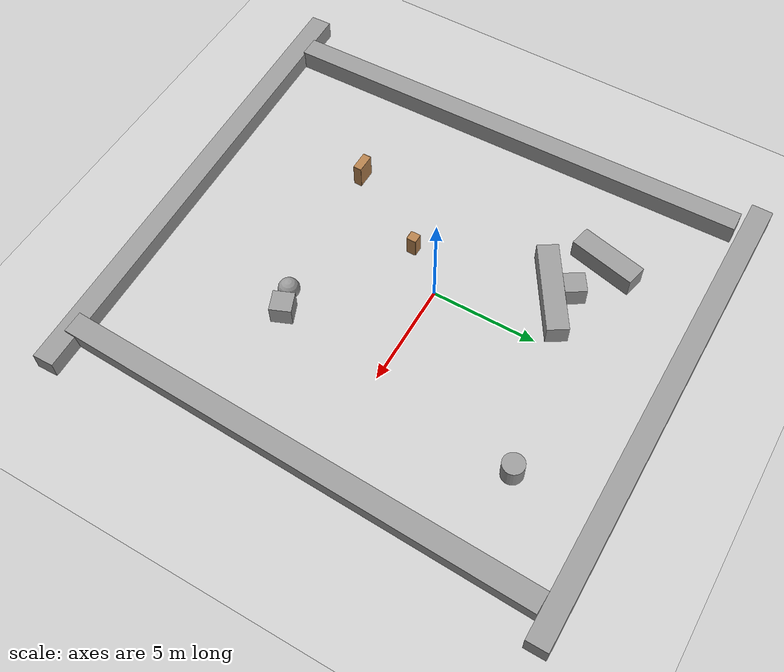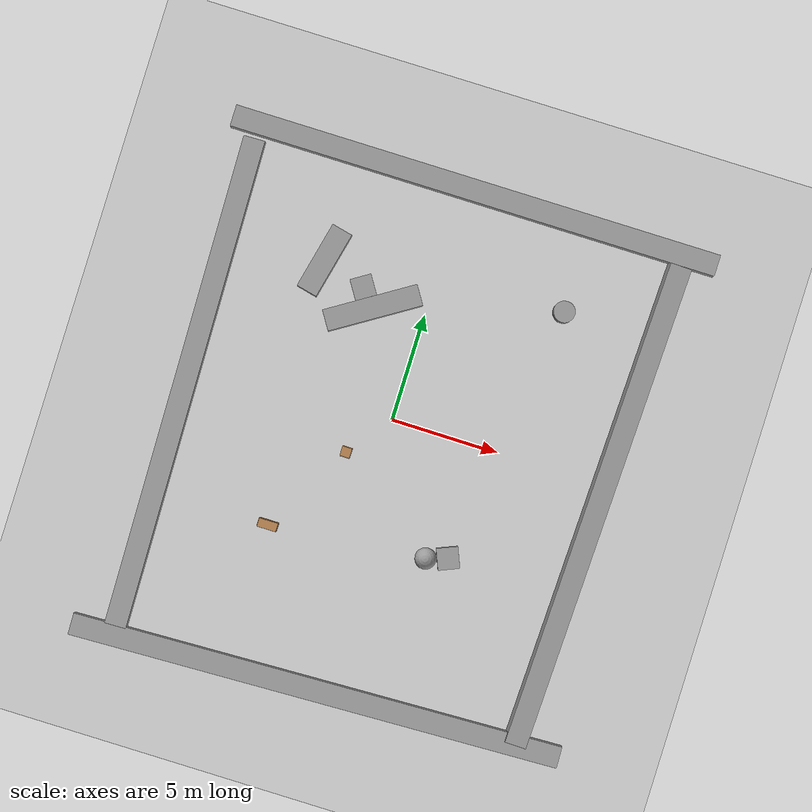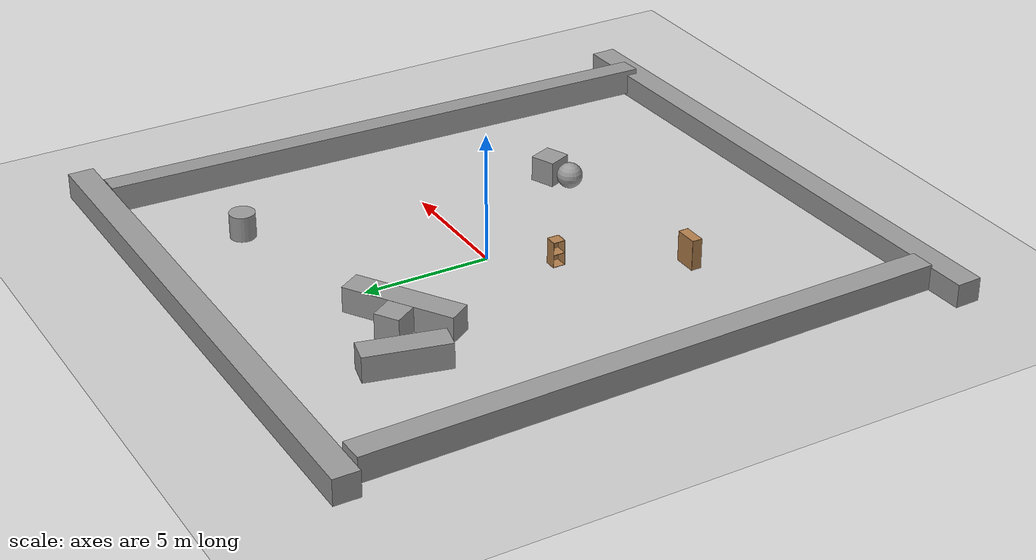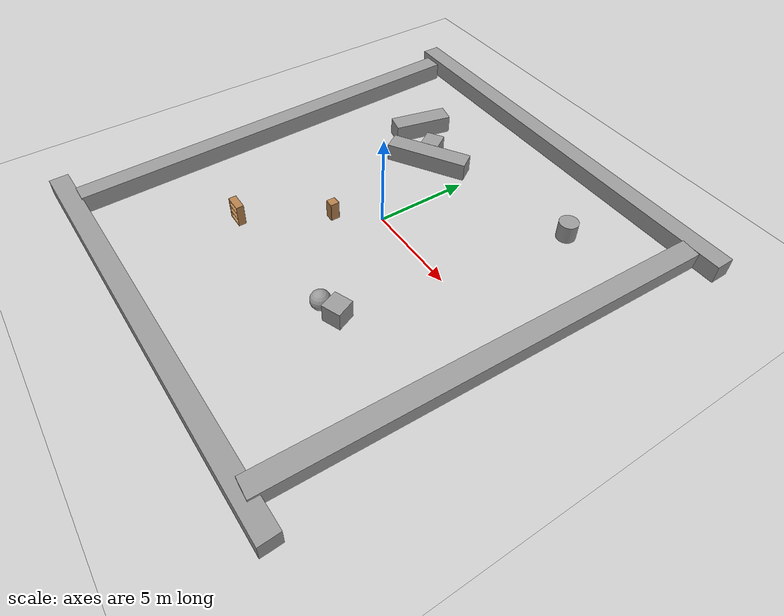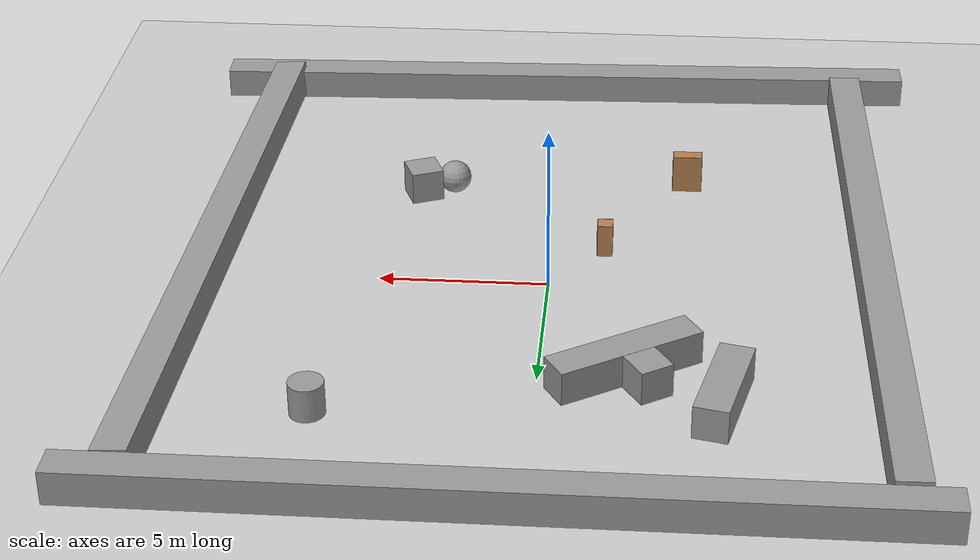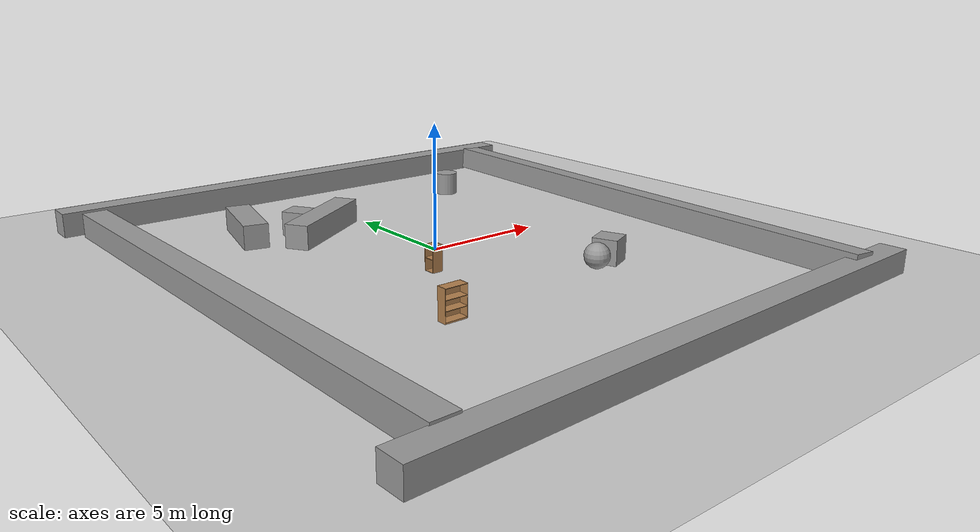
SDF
<sdf version="1.5">
 <world name="default">
  <light name="sun" type="directional">
   <pose>0 0 10 0 -0 0</pose>
   <diffuse>0.8 0.8 0.8 1</diffuse>
   <specular>0.2 0.2 0.2 1</specular>
   <attenuation>
    <range>1000</range>
    <constant>0.9</constant>
    <linear>0.01</linear>
    <quadratic>0.001</quadratic>
   </attenuation>
   <direction>-0.5 0.1 -0.9</direction>
  </light>
  <model name="ground_plane">
   <static>1</static>
   <link name="link">
    <collision name="collision">
     <geometry><plane><normal>0 0 1</normal><size>100 100</size></plane></geometry>
     <surface><friction><ode><mu>100</mu><mu2>50</mu2></ode></friction></surface>
    </collision>
    <visual name="visual">
     <cast_shadows>0</cast_shadows>
     <geometry><plane><normal>0 0 1</normal><size>100 100</size></plane></geometry>
     <material>
      <script><uri>file://media/materials/scripts/gazebo.material</uri><name>Gazebo/Grey</name></script>
     </material>
    </visual>
   </link>
  </model>
  <physics name="default_physics" default="0" type="ode">
   <max_step_size>0.001</max_step_size>
   <real_time_factor>1</real_time_factor>
   <real_time_update_rate>1000</real_time_update_rate>
   <gravity>0 0 -9.8</gravity>
   <magnetic_field>5.5645e-06 2.28758e-05 -4.23884e-05</magnetic_field>
  </physics>
  <scene><ambient>0.4 0.4 0.4 1</ambient><background>0.7 0.7 0.7 1</background><shadows>1</shadows></scene>
  <spherical_coordinates>
   <surface_model>EARTH_WGS84</surface_model>
   <latitude_deg>0</latitude_deg>
   <longitude_deg>0</longitude_deg>
   <elevation>0</elevation>
   <heading_deg>0</heading_deg>
  </spherical_coordinates>
  <model name="unit_box_5">
   <static>1</static>
   <pose>-9.50452 -1.12366 0.484726 0.001332 -3.1e-05 0.021391</pose>
   <link name="link">
    <inertial>
     <mass>1</mass>
     <inertia>
      <ixx>0.166667</ixx>
      <ixy>0</ixy>
      <ixz>0</ixz>
      <iyy>0.166667</iyy>
      <iyz>0</iyz>
      <izz>0.166667</izz>
     </inertia>
    </inertial>
    <collision name="collision"><geometry><box><size>1 22.98 1</size></box></geometry></collision>
    <visual name="visual">
     <geometry><box><size>1 22.98 1</size></box></geometry>
     <material>
      <script><name>Gazebo/Grey</name><uri>file://media/materials/scripts/gazebo.material</uri></script>
     </material>
    </visual>
    <gravity>0</gravity>
   </link>
  </model>
  <model name="unit_box_5_clone">
   <static>1</static>
   <pose>10.0285 -0.951523 0.560557 0.001177 0.073934 -0.033517</pose>
   <link name="link">
    <inertial>
     <mass>1</mass>
     <inertia>
      <ixx>0.166667</ixx>
      <ixy>0</ixy>
      <ixz>0</ixz>
      <iyy>0.166667</iyy>
      <iyz>0</iyz>
      <izz>0.166667</izz>
     </inertia>
    </inertial>
    <collision name="collision"><geometry><box><size>1 22.98 1</size></box></geometry></collision>
    <visual name="visual">
     <geometry><box><size>1 22.98 1</size></box></geometry>
     <material>
      <script><name>Gazebo/Grey</name><uri>file://media/materials/scripts/gazebo.material</uri></script>
     </material>
    </visual>
    <gravity>0</gravity>
   </link>
  </model>
  <model name="unit_box_5_clone_0">
   <static>1</static>
   <pose>0.517126 11.0582 0.546826 0 0 -1.57249</pose>
   <link name="link">
    <inertial>
     <mass>1</mass>
     <inertia>
      <ixx>0.166667</ixx>
      <ixy>0</ixy>
      <ixz>0</ixz>
      <iyy>0.166667</iyy>
      <iyz>0</iyz>
      <izz>0.166667</izz>
     </inertia>
    </inertial>
    <collision name="collision"><geometry><box><size>1 22.98 1</size></box></geometry></collision>
    <visual name="visual">
     <geometry><box><size>1 22.98 1</size></box></geometry>
     <material>
      <script><name>Gazebo/Grey</name><uri>file://media/materials/scripts/gazebo.material</uri></script>
     </material>
    </visual>
    <gravity>0</gravity>
   </link>
  </model>
  <model name="unit_box_5_clone_0_clone">
   <static>1</static>
   <pose>0.273547 -12.7537 0.380426 0 0 -1.53891</pose>
   <link name="link">
    <inertial>
     <mass>1</mass>
     <inertia>
      <ixx>0.166667</ixx>
      <ixy>0</ixy>
      <ixz>0</ixz>
      <iyy>0.166667</iyy>
      <iyz>0</iyz>
      <izz>0.166667</izz>
     </inertia>
    </inertial>
    <collision name="collision"><geometry><box><size>1 22.98 1</size></box></geometry></collision>
    <visual name="visual">
     <geometry><box><size>1 22.98 1</size></box></geometry>
     <material>
      <script><name>Gazebo/Grey</name><uri>file://media/materials/scripts/gazebo.material</uri></script>
     </material>
    </visual>
    <gravity>0</gravity>
   </link>
  </model>
  <model name="unit_cylinder_1">
   <pose>6 7 0.499998 3e-06 -2e-06 0</pose>
   <link name="link">
    <inertial>
     <mass>1</mass>
     <inertia><ixx>0.145833</ixx><ixy>0</ixy><ixz>0</ixz><iyy>0.145833</iyy><iyz>0</iyz><izz>0.125</izz></inertia>
    </inertial>
    <collision name="collision">
     <geometry><cylinder><radius>0.5</radius><length>1</length></cylinder></geometry>
    </collision>
    <visual name="visual">
     <geometry><cylinder><radius>0.5</radius><length>1</length></cylinder></geometry>
     <material>
      <script><name>Gazebo/Grey</name><uri>file://media/materials/scripts/gazebo.material</uri></script>
     </material>
    </visual>
   </link>
  </model>
  <model name="unit_sphere_1">
   <pose>3.29866 -5.55716 0.5 0.00805 -0.03499 0.003184</pose>
   <link name="link">
    <inertial>
     <mass>1</mass>
     <inertia><ixx>0.1</ixx><ixy>0</ixy><ixz>0</ixz><iyy>0.1</iyy><iyz>0</iyz><izz>0.1</izz></inertia>
    </inertial>
    <collision name="collision"><geometry><sphere><radius>0.5</radius></sphere></geometry></collision>
    <visual name="visual">
     <geometry><sphere><radius>0.5</radius></sphere></geometry>
     <material>
      <script><name>Gazebo/Grey</name><uri>file://media/materials/scripts/gazebo.material</uri></script>
     </material>
    </visual>
   </link>
  </model>
  <model name="unit_box_1">
   <pose>-5.08521 6.01932 0.499996 0 -8e-06 -0.229292</pose>
   <link name="link">
    <inertial>
     <mass>1</mass>
     <inertia>
      <ixx>0.166667</ixx>
      <ixy>0</ixy>
      <ixz>0</ixz>
      <iyy>0.166667</iyy>
      <iyz>0</iyz>
      <izz>0.166667</izz>
     </inertia>
    </inertial>
    <collision name="collision"><geometry><box><size>1 3.21602 1</size></box></geometry></collision>
    <visual name="visual">
     <geometry><box><size>1 3.21602 1</size></box></geometry>
     <material>
      <script><name>Gazebo/Grey</name><uri>file://media/materials/scripts/gazebo.material</uri></script>
     </material>
    </visual>
   </link>
  </model>
  <model name="unit_box_2">
   <pose>-2.36641 4.61197 0.499999 3e-06 -4.23516e-22 0.562554</pose>
   <link name="link">
    <inertial>
     <mass>1</mass>
     <inertia>
      <ixx>0.166667</ixx>
      <ixy>0</ixy>
      <ixz>0</ixz>
      <iyy>0.166667</iyy>
      <iyz>0</iyz>
      <izz>0.166667</izz>
     </inertia>
    </inertial>
    <collision name="collision"><geometry><box><size>4.45693 1 1</size></box></geometry></collision>
    <visual name="visual">
     <geometry><box><size>4.45693 1 1</size></box></geometry>
     <material>
      <script><name>Gazebo/Grey</name><uri>file://media/materials/scripts/gazebo.material</uri></script>
     </material>
    </visual>
   </link>
  </model>
  <model name="unit_box_3">
   <pose>4.2614 -5.24177 0.5 0 -0 0.391842</pose>
   <link name="link">
    <inertial>
     <mass>1</mass>
     <inertia>
      <ixx>0.166667</ixx>
      <ixy>0</ixy>
      <ixz>0</ixz>
      <iyy>0.166667</iyy>
      <iyz>0</iyz>
      <izz>0.166667</izz>
     </inertia>
    </inertial>
    <collision name="collision"><geometry><box><size>1 1 1</size></box></geometry></collision>
    <visual name="visual">
     <geometry><box><size>1 1 1</size></box></geometry>
     <material>
      <script><name>Gazebo/Grey</name><uri>file://media/materials/scripts/gazebo.material</uri></script>
     </material>
    </visual>
   </link>
  </model>
  <model name="unit_box_4">
   <pose>-3.04327 5.36944 0.500005 -1.69407e-21 -1e-05 0.566049</pose>
   <link name="link">
    <inertial>
     <mass>1</mass>
     <inertia>
      <ixx>0.166667</ixx>
      <ixy>0</ixy>
      <ixz>0</ixz>
      <iyy>0.166667</iyy>
      <iyz>0</iyz>
      <izz>0.166667</izz>
     </inertia>
    </inertial>
    <collision name="collision"><geometry><box><size>1 1 1</size></box></geometry></collision>
    <visual name="visual">
     <geometry><box><size>1 1 1</size></box></geometry>
     <material>
      <script><name>Gazebo/Grey</name><uri>file://media/materials/scripts/gazebo.material</uri></script>
     </material>
    </visual>
   </link>
  </model>
  <model name="bookshelf">
   <static>1</static>
   <link name="link">
    <inertial><mass>1</mass></inertial>
    <collision name="back">
     <pose>0 0.005 0.6 0 -0 0</pose>
     <geometry><box><size>0.9 0.01 1.2</size></box></geometry>
    </collision>
    <visual name="visual1">
     <pose>0 0.005 0.6 0 -0 0</pose>
     <geometry><box><size>0.9 0.01 1.2</size></box></geometry>
     <material>
      <script><uri>file://media/materials/scripts/gazebo.material</uri><name>Gazebo/Wood</name></script>
     </material>
    </visual>
    <collision name="left_side">
     <pose>0.45 -0.195 0.6 0 -0 0</pose>
     <geometry><box><size>0.02 0.4 1.2</size></box></geometry>
    </collision>
    <visual name="visual2">
     <pose>0.45 -0.195 0.6 0 -0 0</pose>
     <geometry><box><size>0.02 0.4 1.2</size></box></geometry>
     <material>
      <script><uri>file://media/materials/scripts/gazebo.material</uri><name>Gazebo/Wood</name></script>
     </material>
    </visual>
    <collision name="right_side">
     <pose>-0.45 -0.195 0.6 0 -0 0</pose>
     <geometry><box><size>0.02 0.4 1.2</size></box></geometry>
    </collision>
    <visual name="visual3">
     <pose>-0.45 -0.195 0.6 0 -0 0</pose>
     <geometry><box><size>0.02 0.4 1.2</size></box></geometry>
     <material>
      <script><uri>file://media/materials/scripts/gazebo.material</uri><name>Gazebo/Wood</name></script>
     </material>
    </visual>
    <collision name="bottom">
     <pose>0 -0.195 0.03 0 -0 0</pose>
     <geometry><box><size>0.88 0.4 0.06</size></box></geometry>
    </collision>
    <visual name="visual4">
     <pose>0 -0.195 0.03 0 -0 0</pose>
     <geometry><box><size>0.88 0.4 0.06</size></box></geometry>
     <material>
      <script><uri>file://media/materials/scripts/gazebo.material</uri><name>Gazebo/Wood</name></script>
     </material>
    </visual>
    <collision name="top">
     <pose>0 -0.195 1.19 0 -0 0</pose>
     <geometry><box><size>0.88 0.4 0.02</size></box></geometry>
    </collision>
    <visual name="visual5">
     <pose>0 -0.195 1.19 0 -0 0</pose>
     <geometry><box><size>0.88 0.4 0.02</size></box></geometry>
     <material>
      <script><uri>file://media/materials/scripts/gazebo.material</uri><name>Gazebo/Wood</name></script>
     </material>
    </visual>
    <collision name="low_shelf">
     <pose>0 -0.195 0.43 0 -0 0</pose>
     <geometry><box><size>0.88 0.4 0.02</size></box></geometry>
    </collision>
    <visual name="visual6">
     <pose>0 -0.195 0.43 0 -0 0</pose>
     <geometry><box><size>0.88 0.4 0.02</size></box></geometry>
     <material>
      <script><uri>file://media/materials/scripts/gazebo.material</uri><name>Gazebo/Wood</name></script>
     </material>
    </visual>
    <collision name="high_shelf">
     <pose>0 -0.195 0.8 0 -0 0</pose>
     <geometry><box><size>0.88 0.4 0.02</size></box></geometry>
    </collision>
    <visual name="visual7">
     <pose>0 -0.195 0.8 0 -0 0</pose>
     <geometry><box><size>0.88 0.4 0.02</size></box></geometry>
     <material>
      <script><uri>file://media/materials/scripts/gazebo.material</uri><name>Gazebo/Wood</name></script>
     </material>
    </visual>
   </link>
   <pose>-4 -6 0 0 -0 0</pose>
  </model>
  <model name="cabinet">
   <static>1</static>
   <link name="cabinet_bottom_plate">
    <inertial>
     <pose>0 0 -1 0 -0 0</pose>
     <inertia><ixx>2.05</ixx><ixy>0</ixy><ixz>0</ixz><iyy>2.05</iyy><iyz>0</iyz><izz>2.05</izz></inertia>
     <mass>25</mass>
    </inertial>
    <collision name="cabinet_bottom_plate_geom">
     <pose>0 0 0.01 0 -0 0</pose>
     <geometry><box><size>0.45 0.45 0.02</size></box></geometry>
    </collision>
    <visual name="cabinet_bottom_plate_geom_visual">
     <pose>0 0 0.01 0 -0 0</pose>
     <geometry><box><size>0.45 0.45 0.02</size></box></geometry>
     <material>
      <script><uri>file://media/materials/scripts/gazebo.material</uri><name>Gazebo/Wood</name></script>
     </material>
    </visual>
    <collision name="cabinet_bottom_plate_geom_cabinet_back_plate">
     <pose>0.235 0 0.51 0 -0 0</pose>
     <geometry><box><size>0.02 0.45 1.02</size></box></geometry>
    </collision>
    <visual name="cabinet_bottom_plate_geom_cabinet_back_plate_visual">
     <pose>0.235 0 0.51 0 -0 0</pose>
     <geometry><box><size>0.02 0.45 1.02</size></box></geometry>
     <material>
      <script><uri>file://media/materials/scripts/gazebo.material</uri><name>Gazebo/Wood</name></script>
     </material>
    </visual>
    <collision name="cabinet_bottom_plate_geom_cabinet_left_plate">
     <pose>0 0.235 0.51 0 -0 0</pose>
     <geometry><box><size>0.45 0.02 1.02</size></box></geometry>
    </collision>
    <visual name="cabinet_bottom_plate_geom_cabinet_left_plate_visual">
     <pose>0 0.235 0.51 0 -0 0</pose>
     <geometry><box><size>0.45 0.02 1.02</size></box></geometry>
     <material>
      <script><uri>file://media/materials/scripts/gazebo.material</uri><name>Gazebo/Wood</name></script>
     </material>
    </visual>
    <collision name="cabinet_bottom_plate_geom_cabinet_middle_plate">
     <pose>0 0 0.51 0 -0 0</pose>
     <geometry><box><size>0.45 0.45 0.02</size></box></geometry>
    </collision>
    <visual name="cabinet_bottom_plate_geom_cabinet_middle_plate_visual">
     <pose>0 0 0.51 0 -0 0</pose>
     <geometry><box><size>0.45 0.45 0.02</size></box></geometry>
     <material>
      <script><uri>file://media/materials/scripts/gazebo.material</uri><name>Gazebo/Wood</name></script>
     </material>
    </visual>
    <collision name="cabinet_bottom_plate_geom_cabinet_right_plate">
     <pose>0 -0.235 0.51 0 -0 0</pose>
     <geometry><box><size>0.45 0.02 1.02</size></box></geometry>
    </collision>
    <visual name="cabinet_bottom_plate_geom_cabinet_right_plate_visual">
     <pose>0 -0.235 0.51 0 -0 0</pose>
     <geometry><box><size>0.45 0.02 1.02</size></box></geometry>
     <material>
      <script><uri>file://media/materials/scripts/gazebo.material</uri><name>Gazebo/Wood</name></script>
     </material>
    </visual>
    <collision name="cabinet_bottom_plate_geom_cabinet_top_plate">
     <pose>0 0 1.01 0 -0 0</pose>
     <geometry><box><size>0.45 0.45 0.02</size></box></geometry>
    </collision>
    <visual name="cabinet_bottom_plate_geom_cabinet_top_plate_visual">
     <pose>0 0 1.01 0 -0 0</pose>
     <geometry><box><size>0.45 0.45 0.02</size></box></geometry>
     <material>
      <script><uri>file://media/materials/scripts/gazebo.material</uri><name>Gazebo/Wood</name></script>
     </material>
    </visual>
   </link>
   <pose>-1.5854 -2 0 0 -0 0</pose>
  </model>
 </world>
</sdf>
